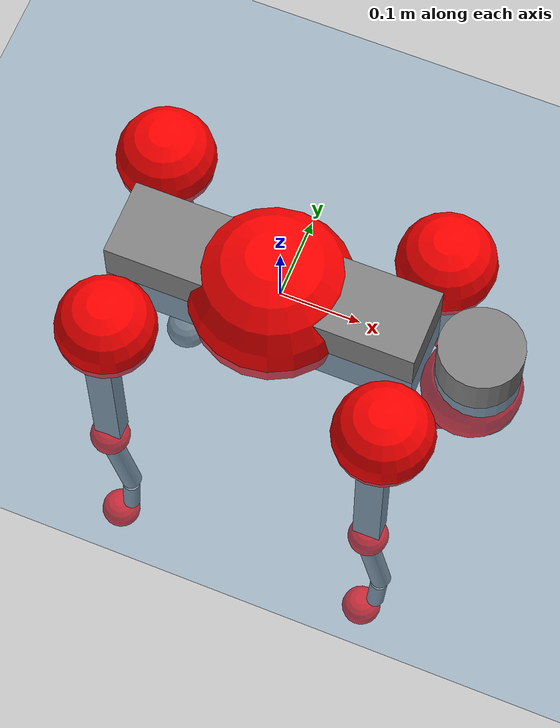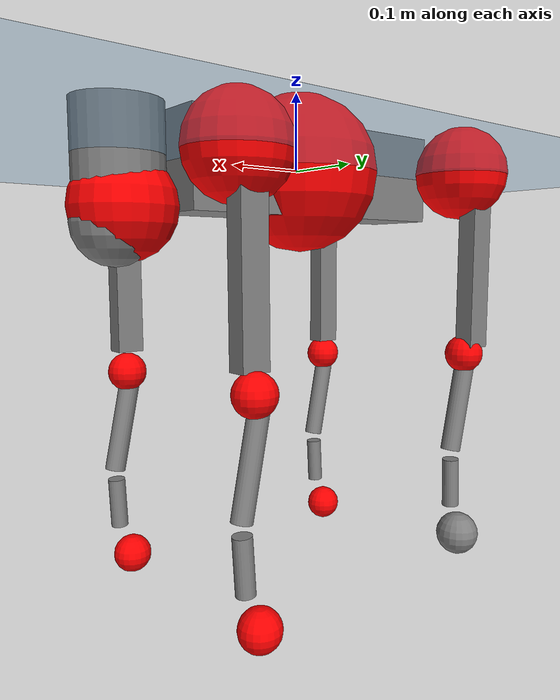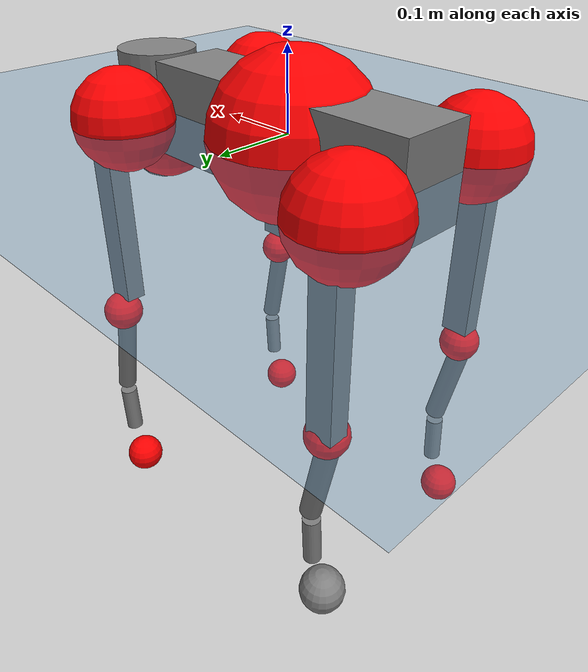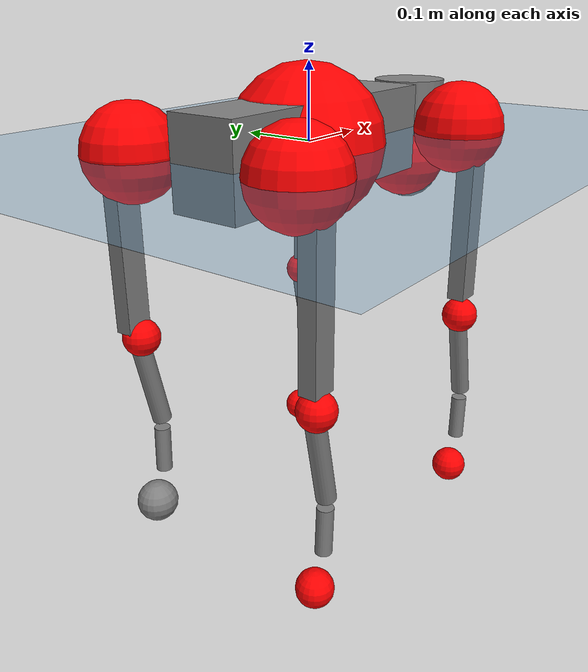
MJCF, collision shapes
<mujoco model="go2">
  <compiler angle="radian" assetdir="assets" balanceinertia="true" inertiafromgeom="false"/>

  <option timestep="0.005" density="1.2" viscosity="2e-05"/>

  <size nkey="1"/>

  <visual>
    <quality shadowsize="8192"/>
    <map shadowclip="0.5"/>
  </visual>

  <default>
    <default class="/">
      <geom contype="0" conaffinity="0" group="1" solref="-1000 -80"/>
      <site size="0.01 0.005 0.005" group="5"/>
      <general forcelimited="true" biastype="affine" gainprm="20" biasprm="0 -20 -0.5"/>
      <default class="go2">
        <joint armature="0.01" damping="0.01" frictionloss="0.2"/>
        <geom condim="1" margin="0.001"/>
        <default class="visual">
          <geom type="mesh" group="2"/>
        </default>
        <default class="collision">
          <geom group="3"/>
          <default class="foot">
            <geom size="0.022 0 0" condim="6" priority="1" friction="0.8 0.02 0.01" solimp="0.015 1 0.022"/>
          </default>
        </default>
        <default class="reward_collision_sphere">
          <geom group="5" rgba="1 0 0 1"/>
        </default>
      </default>
    </default>
  </default>

  <asset>
    <texture type="skybox" colorspace="auto" name="//unnamed_texture_0" builtin="gradient" rgb1="0.95 0.95 0.95" rgb2="0.95 0.95 0.95" width="100" height="600"/>
    <texture type="2d" colorspace="auto" name="texplane" builtin="checker" rgb1="0.345 0.575 0.748" rgb2="0.345 0.575 0.748" markrgb="1 1 1" width="512" height="512"/>
    <material name="MatPlane" class="/" texture="texplane" texuniform="true" texrepeat="2 2" specular="0.9"/>
    <material name="metal" class="/" rgba="0.9 0.95 0.95 1"/>
    <material name="black" class="/" rgba="0 0 0 1"/>
    <material name="white" class="/"/>
    <material name="gray" class="/" rgba="0.671705 0.692426 0.77427 1"/>
    <mesh name="base_0" class="/" file="base_0.obj"/>
    <mesh name="base_1" class="/" file="base_1.obj"/>
    <mesh name="base_2" class="/" file="base_2.obj"/>
    <mesh name="base_3" class="/" file="base_3.obj"/>
    <mesh name="base_4" class="/" file="base_4.obj"/>
    <mesh name="hip_0" class="/" file="hip_0.obj"/>
    <mesh name="hip_1" class="/" file="hip_1.obj"/>
    <mesh name="thigh_0" class="/" file="thigh_0.obj"/>
    <mesh name="thigh_1" class="/" file="thigh_1.obj"/>
    <mesh name="thigh_mirror_0" class="/" file="thigh_mirror_0.obj"/>
    <mesh name="thigh_mirror_1" class="/" file="thigh_mirror_1.obj"/>
    <mesh name="calf_0" class="/" file="calf_0.obj"/>
    <mesh name="calf_1" class="/" file="calf_1.obj"/>
    <mesh name="calf_mirror_0" class="/" file="calf_mirror_0.obj"/>
    <mesh name="calf_mirror_1" class="/" file="calf_mirror_1.obj"/>
    <mesh name="foot" class="/" file="foot.obj"/>
  </asset>

  <worldbody>
    <geom name="floor" class="/" size="100 100 0.125" type="plane" group="0" material="MatPlane"/>
    <light name="toplight_shadow" class="/" pos="0 0 5" dir="0.0990148 0.0990148 -0.990148" type="directional" ambient="0.04 0.04 0.04" diffuse="0.55 0.55 0.55" specular="0.12 0.12 0.12"/>
    <light name="toplight_fill" class="/" pos="0 0 5" dir="0.0990148 0.0990148 -0.990148" type="directional" castshadow="false" ambient="0.04 0.04 0.04" diffuse="0.3 0.3 0.3" specular="0.08 0.08 0.08"/>
    <body name="trunk" childclass="go2" pos="-0.00871687 -0.00217857 -0.00163347" quat="1 -0.00012172 -3.1875e-05 -8.13828e-05">
      <inertial pos="0.0183764 -0.0017194 -0.00668035" quat="-0.00422495 0.726515 -0.00548369 0.687116" mass="7.69616" diaginertia="0.0533662 0.0668769 0.0663642"/>
      <joint name="//unnamed_joint_0" type="free" armature="0" damping="0" frictionloss="0"/>
      <geom name="//unnamed_geom_1" class="visual" material="black" mesh="base_0"/>
      <geom name="//unnamed_geom_2" class="visual" material="black" mesh="base_1"/>
      <geom name="//unnamed_geom_3" class="visual" material="black" mesh="base_2"/>
      <geom name="//unnamed_geom_4" class="visual" material="white" mesh="base_3"/>
      <geom name="//unnamed_geom_5" class="visual" material="gray" mesh="base_4"/>
      <geom name="trunk_1" class="collision" size="0.193904 0.0481926 0.0587589" type="box"/>
      <geom name="trunk_2" class="collision" size="0.0515429 0.0463886" pos="0.258984 0 0.0122634" type="cylinder"/>
      <geom name="trunk_3" class="collision" size="0.0484503" pos="0.266253 0 -0.0735801"/>
      <geom name="//unnamed_geom_9" class="reward_collision_sphere" size="0.103086"/>
      <geom name="//unnamed_geom_10" class="reward_collision_sphere" size="0.0618515" pos="0.25444 0 -0.0551851"/>
      <site name="imu" pos="-0.026773 -0.00496537 0.102953" size="0.0103086"/>
      <camera name="track" pos="0 -1.91505 0" quat="0.707107 0.707107 0 0" mode="trackcom"/>
      <camera name="ego_camera" pos="0.283519 0 0.0551851" quat="-0.5 -0.5 0.5 0.5"/>
      <body name="FL_hip" pos="0.177497 0.0446119 0.00456645" quat="0.999992 0.000945247 0.00208718 0.00321745">
        <inertial pos="0.00471831 0.00426708 -0.00214089" quat="0.493047 0.501573 0.505317 0.499984" mass="0.726052" diaginertia="0.00053477 0.000505344 0.00128284"/>
        <joint name="FL_hip_joint" pos="0 0 0" axis="0.998324 0.0554045 0.0167245" stiffness="0.0456982" range="-1.07835 1.04508" armature="0.0152972" damping="0.00907373" frictionloss="0.171421"/>
        <geom name="//unnamed_geom_11" class="visual" material="metal" mesh="hip_0"/>
        <geom name="//unnamed_geom_12" class="visual" material="gray" mesh="hip_1"/>
        <geom name="//unnamed_geom_13" class="collision" size="0.0474195 0.0206172" pos="0 0.0766019 0" quat="0.707107 0.707107 0 0" type="cylinder"/>
        <geom name="//unnamed_geom_14" class="reward_collision_sphere" size="0.0618515" pos="0 0.0670266 0"/>
        <body name="FL_thigh" pos="0.00525437 0.0899136 0.00410265" quat="0.999999 0.00063234 -0.000742099 -0.00100004">
          <inertial pos="-0.00521393 -0.0207062 -0.0293727" quat="0.831865 0.0942728 -0.0310056 0.546033" mass="1.31487" diaginertia="0.0038406 0.00479885 0.00243126"/>
          <joint name="FL_thigh_joint" pos="0 0 0" axis="-0.009183 0.999788 0.0184115" stiffness="0.0257936" range="-1.62239 3.49123" armature="0.00600125" damping="0.0277457" frictionloss="0.251423"/>
          <geom name="//unnamed_geom_15" class="visual" material="metal" mesh="thigh_0"/>
          <geom name="//unnamed_geom_16" class="visual" material="gray" mesh="thigh_1"/>
          <geom name="//unnamed_geom_17" class="collision" size="0.109786 0.012628 0.0175246" pos="0 0 -0.130605" quat="0.707107 0 0.707107 0" type="box"/>
          <body name="FL_calf" pos="0.00181788 0.0110396 -0.263025" quat="0.999995 0.00126718 0.00202138 0.00185969">
            <inertial pos="0.00243483 -0.000415241 -0.176518" quat="0.740392 0.0199395 -0.0127695 0.671758" mass="0.233953" diaginertia="0.000941248 0.00112126 0.000152301"/>
            <joint name="FL_calf_joint" pos="0 0 0" axis="0.00877185 0.999956 -0.00330773" stiffness="0.00416621" range="-2.71202 -0.852438" armature="0.010572" damping="0.036317" frictionloss="0.220997"/>
            <geom name="//unnamed_geom_18" class="visual" material="gray" mesh="calf_0"/>
            <geom name="//unnamed_geom_19" class="visual" material="black" mesh="calf_1"/>
            <geom name="FL_calf0" class="collision" size="0.0123703 0.0618515" pos="0.00726971 0 -0.0735801" quat="0.994493 0 -0.104807 0" type="cylinder"/>
            <geom name="//unnamed_geom_21" class="collision" size="0.0113394 0.0335029" pos="0.0181743 0 -0.181498" quat="0.999688 0 0.0249974 0" type="cylinder"/>
            <geom name="//unnamed_geom_22" class="visual" pos="0 0 -0.261209" quat="1 0 0 0" material="black" mesh="foot"/>
            <geom name="FL_foot" class="foot" size="0.0175393" pos="-0.00181743 0 -0.261209"/>
            <geom name="//unnamed_geom_24" class="reward_collision_sphere" size="0.0257714"/>
            <geom name="//unnamed_geom_25" class="reward_collision_sphere" size="0.0257714" pos="-0.00181743 0 -0.261209"/>
            <site name="FL_foot" class="foot" pos="-0.00181743 0 -0.261209" size="0.0103086"/>
          </body>
        </body>
      </body>
      <body name="FR_hip" pos="0.186565 -0.0550012 0.00768267" quat="1 -0.000375238 -0.000294837 0.000660888">
        <inertial pos="-0.0153802 -0.00258605 0.00927365" quat="0.508092 0.507407 0.478721 0.50518" mass="0.657868" diaginertia="0.000469433 0.000448499 0.00117139"/>
        <joint name="FR_hip_joint" pos="0 0 0" axis="0.999081 -0.00452346 0.0426185" stiffness="0.00861271" range="-0.85801 1.06977" armature="0.0109524" damping="0.00652088" frictionloss="0.286355"/>
        <geom name="//unnamed_geom_26" class="visual" pos="0 -2.34178e-09 -1.00444e-07" quat="4.63268e-05 1 0 0" material="metal" mesh="hip_0"/>
        <geom name="//unnamed_geom_27" class="visual" pos="0 -3.7963e-09 2.48436e-07" quat="4.63268e-05 1 0 0" material="gray" mesh="hip_1"/>
        <geom name="//unnamed_geom_28" class="collision" size="0.0474195 0.0206172" pos="0 -0.0766019 0" quat="0.707107 0.707107 0 0" type="cylinder"/>
        <geom name="//unnamed_geom_29" class="reward_collision_sphere" size="0.0618515" pos="0 -0.0670266 0"/>
        <body name="FR_thigh" pos="-0.000955736 -0.0905309 -0.00453275" quat="1 2.98603e-05 1.92562e-05 2.25355e-05">
          <inertial pos="0.000262181 0.00974183 -0.0408001" quat="0.55163 -0.0200669 0.0847619 0.829528" mass="1.23523" diaginertia="0.00363345 0.0046586 0.00240744"/>
          <joint name="FR_thigh_joint" pos="0 0 0" axis="-0.0088977 -0.99943 0.0325801" range="-3.51341 1.50023" armature="0.0107665" damping="0.0392116" frictionloss="0.20963"/>
          <geom name="//unnamed_geom_30" class="visual" material="metal" mesh="thigh_mirror_0"/>
          <geom name="//unnamed_geom_31" class="visual" material="gray" mesh="thigh_mirror_1"/>
          <geom name="//unnamed_geom_32" class="collision" size="0.109786 0.012628 0.0175246" pos="0 0 -0.130605" quat="0.707107 0 0.707107 0" type="box"/>
          <body name="FR_calf" pos="-8.16034e-05 -0.00117961 -0.269103" quat="0.999986 -0.00520173 -0.000891321 -0.000253674">
            <inertial pos="-0.00602373 0.00589574 -0.181182" quat="0.703394 -0.00255854 0.00298329 0.71079" mass="0.287281" diaginertia="0.000872265 0.00104732 0.000126563"/>
            <joint name="FR_calf_joint" pos="0 0 0" axis="-0.00775148 -0.999968 0.00184762" range="1.03323 2.6899" armature="0.0108538" damping="0" frictionloss="0.118702"/>
            <geom name="//unnamed_geom_33" class="visual" material="gray" mesh="calf_mirror_0"/>
            <geom name="//unnamed_geom_34" class="visual" material="black" mesh="calf_mirror_1"/>
            <geom name="FR_calf0" class="collision" size="0.0134011 0.0618515" pos="0.00908714 0 -0.0735801" quat="0.995004 0 -0.0998334 0" type="cylinder"/>
            <geom name="//unnamed_geom_36" class="collision" size="0.0113394 0.0335029" pos="0.0181743 0 -0.181498" quat="0.999688 0 0.0249974 0" type="cylinder"/>
            <geom name="//unnamed_geom_37" class="visual" pos="0 0 -0.261209" quat="1 0 0 0" material="black" mesh="foot"/>
            <geom name="FR_foot" class="foot" size="0.0239234" pos="-0.00181743 0 -0.261209"/>
            <geom name="//unnamed_geom_39" class="reward_collision_sphere" size="0.0257714"/>
            <geom name="//unnamed_geom_40" class="reward_collision_sphere" size="0.0257714" pos="-0.00181743 0 -0.261209"/>
            <site name="FR_foot" class="foot" pos="-0.00181743 0 -0.261209" size="0.0103086"/>
          </body>
        </body>
      </body>
      <body name="RL_hip" pos="-0.18776 0.0527897 0.00351063" quat="1 -0.000162815 -0.000666491 -3.73167e-05">
        <inertial pos="-0.00493492 0.0132397 0.00126568" quat="0.476201 0.49209 0.525161 0.505259" mass="0.76432" diaginertia="0.00054535 0.000474038 0.00144808"/>
        <joint name="RL_hip_joint" pos="0 0 0" axis="-0.9999 -0.0104066 -0.00956226" stiffness="0.00198895" range="-1.16444 1.00621" armature="0.0105847" damping="0.0057471" frictionloss="0.222798"/>
        <geom name="//unnamed_geom_41" class="visual" pos="2.76698e-09 0 5.42393e-07" quat="4.63268e-05 0 1 0" material="metal" mesh="hip_0"/>
        <geom name="//unnamed_geom_42" class="visual" pos="4.48561e-09 0 4.81025e-07" quat="4.63268e-05 0 1 0" material="gray" mesh="hip_1"/>
        <geom name="//unnamed_geom_43" class="collision" size="0.0474195 0.0206172" pos="0 0.0766019 0" quat="0.707107 0.707107 0 0" type="cylinder"/>
        <geom name="//unnamed_geom_44" class="reward_collision_sphere" size="0.0618515" pos="0 0.0670266 0"/>
        <body name="RL_thigh" pos="-0.0040969 0.089167 0.00310876" quat="1 -0.000383522 -0.000875672 0.000127207">
          <inertial pos="-0.00337701 -0.0315559 -0.038298" quat="0.835339 0.0964865 0.00991867 0.54111" mass="1.16505" diaginertia="0.00364003 0.00442954 0.00255976"/>
          <joint name="RL_thigh_joint" pos="0 0 0" axis="0.0440128 0.998954 -0.0124321" stiffness="0.032303" range="-0.640204 4.43767" armature="0.00557568" damping="0.00120575" frictionloss="0.125044"/>
          <geom name="//unnamed_geom_45" class="visual" material="metal" mesh="thigh_0"/>
          <geom name="//unnamed_geom_46" class="visual" material="gray" mesh="thigh_1"/>
          <geom name="//unnamed_geom_47" class="collision" size="0.109786 0.012628 0.0175246" pos="0 0 -0.130605" quat="0.707107 0 0.707107 0" type="box"/>
          <body name="RL_calf" pos="0.00518667 -0.00756021 -0.250382" quat="0.999985 -0.00336143 -0.00390336 -0.00200138">
            <inertial pos="0.00708235 -0.000743537 -0.185303" quat="0.704593 0.0144148 0.00844206 0.709415" mass="0.298775" diaginertia="0.00091638 0.00123917 0.000152741"/>
            <joint name="RL_calf_joint" pos="0 0 0" axis="0.0038859 0.99995 0.00921455" stiffness="0.0156599" range="-2.73027 -0.733634" armature="0.0101342" damping="0.0130345" frictionloss="0.278335"/>
            <geom name="//unnamed_geom_48" class="visual" material="gray" mesh="calf_0"/>
            <geom name="//unnamed_geom_49" class="visual" material="black" mesh="calf_1"/>
            <geom name="RL_calf0" class="collision" size="0.0134011 0.0618515" pos="0.00908714 0 -0.0735801" quat="0.995004 0 -0.0998334 0" type="cylinder"/>
            <geom name="//unnamed_geom_51" class="collision" size="0.0113394 0.0335029" pos="0.0181743 0 -0.181498" quat="0.999688 0 0.0249974 0" type="cylinder"/>
            <geom name="//unnamed_geom_52" class="visual" pos="0 0 -0.261209" quat="1 0 0 0" material="black" mesh="foot"/>
            <geom name="RL_foot" class="foot" size="0.0292741" pos="-0.00181743 0 -0.261209"/>
            <geom name="//unnamed_geom_54" class="reward_collision_sphere" size="0.0257714"/>
            <geom name="//unnamed_geom_55" class="reward_collision_sphere" size="0.0257714" pos="-0.00181743 0 -0.261209"/>
            <site name="RL_foot" class="foot" pos="-0.00181743 0 -0.261209" size="0.0103086"/>
          </body>
        </body>
      </body>
      <body name="RR_hip" pos="-0.165751 -0.0469524 0.00134903" quat="1 8.61451e-05 -6.5888e-05 0.000791867">
        <inertial pos="-0.0013518 -0.00566968 0.00129629" quat="0.522525 0.458315 0.490324 0.52583" mass="0.733325" diaginertia="0.000514534 0.00044498 0.00124088"/>
        <joint name="RR_hip_joint" pos="0 0 0" axis="-0.998636 0.03105 -0.0419719" range="-1.04936 1.02212" armature="0.0114892" damping="0" frictionloss="0.222409"/>
        <geom name="//unnamed_geom_56" class="visual" pos="-2.76529e-09 -2.34178e-09 6.42836e-07" quat="2.14617e-09 4.63268e-05 4.63268e-05 -1" material="metal" mesh="hip_0"/>
        <geom name="//unnamed_geom_57" class="visual" pos="-4.48979e-09 -3.7963e-09 2.32589e-07" quat="2.14617e-09 4.63268e-05 4.63268e-05 -1" material="gray" mesh="hip_1"/>
        <geom name="//unnamed_geom_58" class="collision" size="0.0474195 0.0206172" pos="0 -0.0766019 0" quat="0.707107 0.707107 0 0" type="cylinder"/>
        <geom name="//unnamed_geom_59" class="reward_collision_sphere" size="0.0618515" pos="0 -0.0670266 0"/>
        <body name="RR_thigh" pos="0.000459941 -0.0909771 -0.0088674" quat="1 0.000278325 -7.35313e-05 -0.000929398">
          <inertial pos="-0.00379252 0.0196478 -0.0411818" quat="0.589403 -0.0421291 0.0604436 0.804472" mass="1.29046" diaginertia="0.00367126 0.00432891 0.00213047"/>
          <joint name="RR_thigh_joint" pos="0 0 0" axis="0.00144023 -0.999999 -5.14785e-05" stiffness="0.0312255" range="-4.51506 0.488392" armature="0.00666375" damping="0.0480338" frictionloss="0.242294"/>
          <geom name="//unnamed_geom_60" class="visual" material="metal" mesh="thigh_mirror_0"/>
          <geom name="//unnamed_geom_61" class="visual" material="gray" mesh="thigh_mirror_1"/>
          <geom name="//unnamed_geom_62" class="collision" size="0.109786 0.012628 0.0175246" pos="0 0 -0.130605" quat="0.707107 0 0.707107 0" type="box"/>
          <body name="RR_calf" pos="-0.0019144 -0.00299654 -0.262499" quat="0.999999 0.000216433 -9.64596e-05 0.0011664">
            <inertial pos="0.0142671 0.0111997 -0.183212" quat="0.704214 -0.00790689 0.00929191 0.709883" mass="0.234099" diaginertia="0.00096979 0.00103862 0.000145366"/>
            <joint name="RR_calf_joint" pos="0 0 0" axis="0.0055859 -0.999904 0.0126492" range="0.873486 2.52671" armature="0.0101519" damping="0.00214419" frictionloss="0.102669"/>
            <geom name="//unnamed_geom_63" class="visual" material="gray" mesh="calf_mirror_0"/>
            <geom name="//unnamed_geom_64" class="visual" material="black" mesh="calf_mirror_1"/>
            <geom name="RR_calf0" class="collision" size="0.0134011 0.0618515" pos="0.00908714 0 -0.0735801" quat="0.995004 0 -0.0998334 0" type="cylinder"/>
            <geom name="//unnamed_geom_66" class="collision" size="0.0113394 0.0335029" pos="0.0181743 0 -0.181498" quat="0.999688 0 0.0249974 0" type="cylinder"/>
            <geom name="//unnamed_geom_67" class="visual" pos="0 0 -0.261209" quat="1 0 0 0" material="black" mesh="foot"/>
            <geom name="RR_foot" class="foot" size="0.014475" pos="-0.00181743 0 -0.261209"/>
            <geom name="//unnamed_geom_69" class="reward_collision_sphere" size="0.0257714"/>
            <geom name="//unnamed_geom_70" class="reward_collision_sphere" size="0.0257714" pos="-0.00181743 0 -0.261209"/>
            <site name="RR_foot" class="foot" pos="-0.00181743 0 -0.261209" size="0.0103086"/>
          </body>
        </body>
      </body>
    </body>
  </worldbody>

  <contact>
    <pair class="/" geom1="floor" geom2="FL_foot" name="//unnamed_contact_0"/>
    <pair class="/" geom1="floor" geom2="FR_foot" name="//unnamed_contact_1"/>
    <pair class="/" geom1="floor" geom2="RL_foot" name="//unnamed_contact_2"/>
    <pair class="/" geom1="floor" geom2="RR_foot" name="//unnamed_contact_3"/>
  </contact>

  <actuator>
    <general name="FL_hip" class="/" joint="FL_hip_joint" forcerange="-24.6857 24.6857" gainprm="21.087" biasprm="0 -21.087 -0.501077"/>
    <general name="FL_thigh" class="/" joint="FL_thigh_joint" forcerange="-31.6087 31.6087" gainprm="21.087" biasprm="0 -21.087 -0.501077"/>
    <general name="FL_calf" class="/" joint="FL_calf_joint" forcerange="-42.1696 42.1696" gainprm="21.087" biasprm="0 -21.087 -0.501077"/>
    <general name="FR_hip" class="/" joint="FR_hip_joint" forcerange="-23.8756 23.8756" gainprm="21.087" biasprm="0 -21.087 -0.501077"/>
    <general name="FR_thigh" class="/" joint="FR_thigh_joint" forcerange="-25.4354 25.4354" gainprm="21.087" biasprm="0 -21.087 -0.501077"/>
    <general name="FR_calf" class="/" joint="FR_calf_joint" forcerange="-38.3809 38.3809" gainprm="21.087" biasprm="0 -21.087 -0.501077"/>
    <general name="RL_hip" class="/" joint="RL_hip_joint" forcerange="-23.9838 23.9838" gainprm="21.087" biasprm="0 -21.087 -0.501077"/>
    <general name="RL_thigh" class="/" joint="RL_thigh_joint" forcerange="-19.857 19.857" gainprm="21.087" biasprm="0 -21.087 -0.501077"/>
    <general name="RL_calf" class="/" joint="RL_calf_joint" forcerange="-54.1709 54.1709" gainprm="21.087" biasprm="0 -21.087 -0.501077"/>
    <general name="RR_hip" class="/" joint="RR_hip_joint" forcerange="-22.8806 22.8806" gainprm="21.087" biasprm="0 -21.087 -0.501077"/>
    <general name="RR_thigh" class="/" joint="RR_thigh_joint" forcerange="-23.3619 23.3619" gainprm="21.087" biasprm="0 -21.087 -0.501077"/>
    <general name="RR_calf" class="/" joint="RR_calf_joint" forcerange="-66.2683 66.2683" gainprm="21.087" biasprm="0 -21.087 -0.501077"/>
  </actuator>

  <sensor>
    <gyro site="imu" name="imu_angular_velocity"/>
    <velocimeter site="imu" name="imu_linear_velocity"/>
    <framelinvel objtype="site" objname="FL_foot" name="FL_foot_global_linear_velocity"/>
    <framelinvel objtype="site" objname="FR_foot" name="FR_foot_global_linear_velocity"/>
    <framelinvel objtype="site" objname="RL_foot" name="RL_foot_global_linear_velocity"/>
    <framelinvel objtype="site" objname="RR_foot" name="RR_foot_global_linear_velocity"/>
  </sensor>

  <keyframe>
    <key name="home" qpos="0 0 0.325 1 0 0 0 0.1 0.8 -1.5 -0.1 -0.8 1.5 -0.1 0.8 -1.5 0.1 -0.8 1.5"/>
  </keyframe>
</mujoco>
